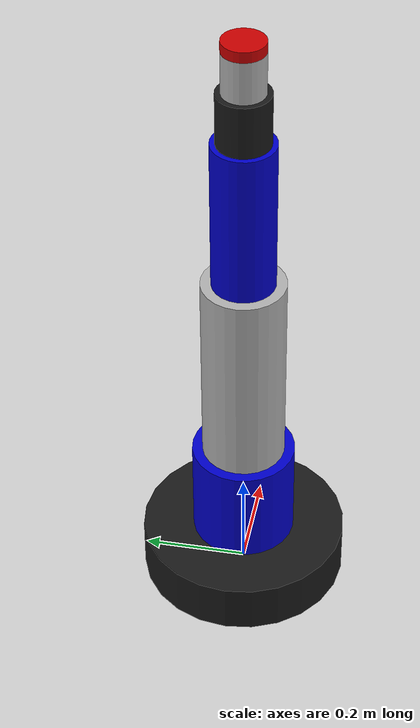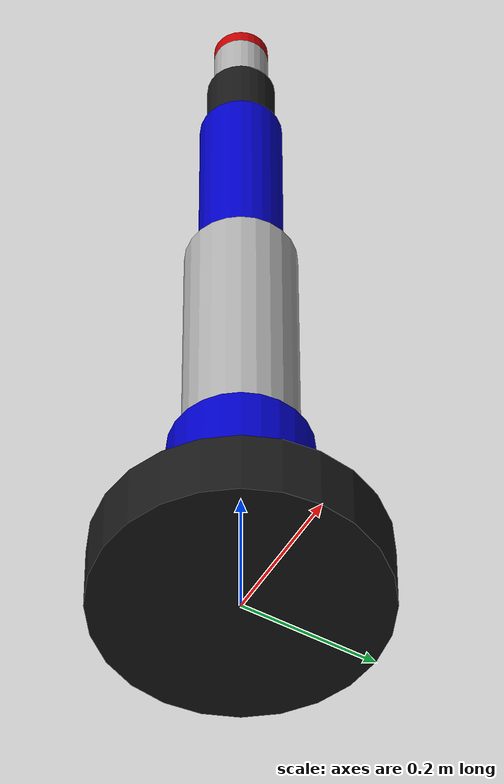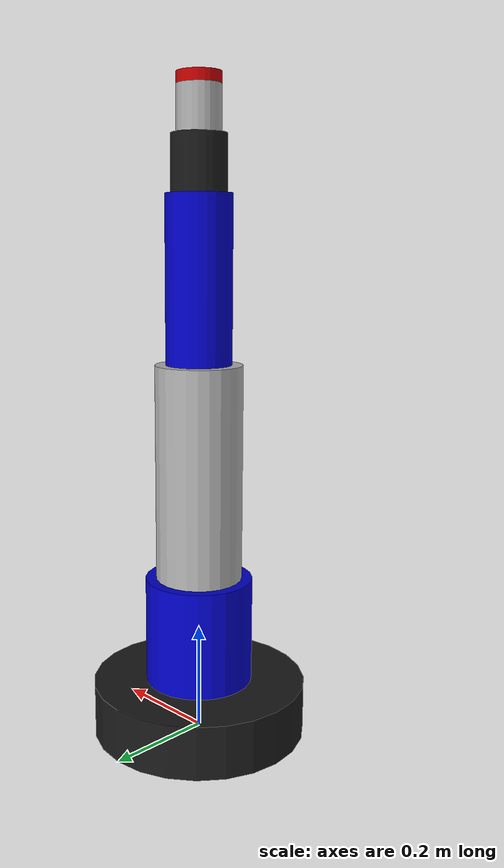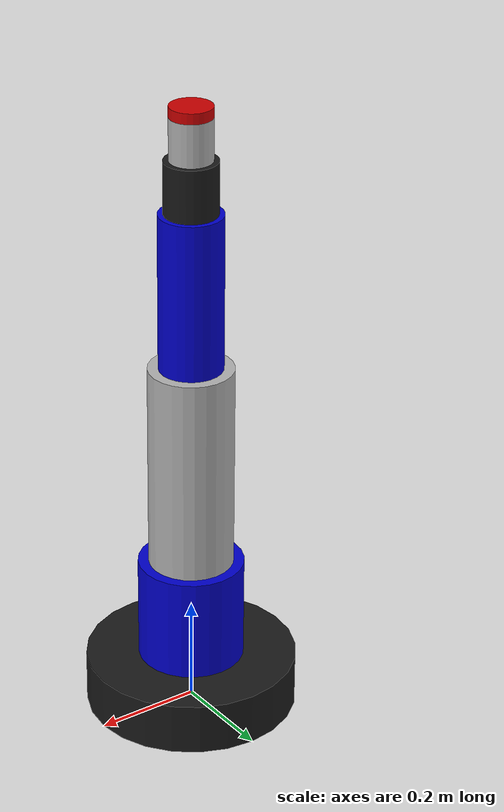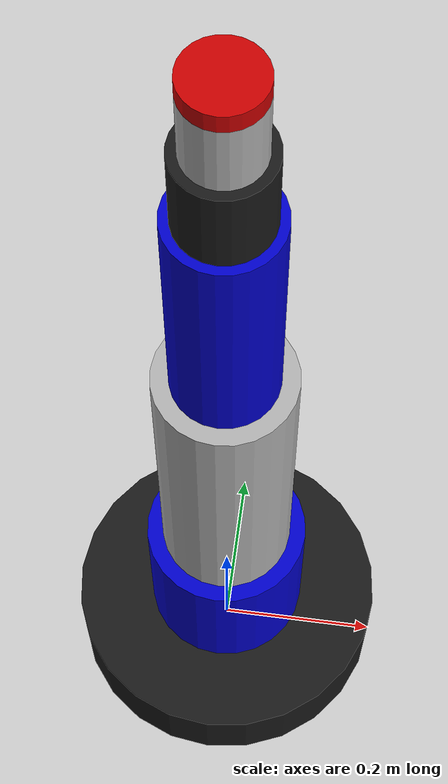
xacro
<?xml version="1.0"?>
<robot xmlns:xacro="http://www.ros.org/wiki/xacro" name="robotic_arm">

  <!-- Materials -->
  <material name="silver">
    <color rgba="0.7 0.7 0.7 1.0"/>
  </material>
  <material name="blue">
    <color rgba="0.0 0.0 0.8 1.0"/>
  </material>
  <material name="black">
    <color rgba="0.1 0.1 0.1 1.0"/>
  </material>
  <material name="red">
    <color rgba="0.8 0.0 0.0 1.0"/>
  </material>

  <!-- Cylinder Inertial Macro -->
  <xacro:macro name="cylinder_inertial" params="mass radius height *origin">
    <inertial>
      <xacro:insert_block name="origin"/>
      <mass value="${mass}"/>
      <inertia ixx="${(1.0/12.0) * mass * (3.0*radius*radius + height*height)}" ixy="0.0" ixz="0.0"
               iyy="${(1.0/12.0) * mass * (3.0*radius*radius + height*height)}" iyz="0.0"
               izz="${0.5 * mass * radius * radius}"/>
    </inertial>
  </xacro:macro>

  <!-- World link fixed to Base -->
  <link name="world"/>

  <joint name="world_joint" type="fixed">
    <parent link="world"/>
    <child link="base_link"/>
    <origin xyz="0.0 0.0 0.0" rpy="0.0 0.0 0.0"/>
  </joint>

  <!-- Base Link -->
  <link name="base_link">
    <visual>
      <origin xyz="0.0 0.0 0.05" rpy="0.0 0.0 0.0"/>
      <geometry>
        <cylinder radius="0.2" length="0.1"/>
      </geometry>
      <material name="black"/>
    </visual>
    <collision>
      <origin xyz="0.0 0.0 0.05" rpy="0.0 0.0 0.0"/>
      <geometry>
        <cylinder radius="0.2" length="0.1"/>
      </geometry>
    </collision>
    <xacro:cylinder_inertial mass="5.0" radius="0.2" height="0.1">
      <origin xyz="0.0 0.0 0.05" rpy="0.0 0.0 0.0"/>
    </xacro:cylinder_inertial>
  </link>

  <!-- Joint 1 -->
  <joint name="joint1" type="revolute">
    <parent link="base_link"/>
    <child link="shoulder_link"/>
    <origin xyz="0.0 0.0 0.1" rpy="0.0 0.0 0.0"/>
    <axis xyz="0 0 1"/>
    <limit lower="-3.14159" upper="3.14159" effort="100.0" velocity="2.0"/>
    <dynamics damping="0.5" friction="0.1"/>
  </joint>

  <!-- Shoulder Link -->
  <link name="shoulder_link">
    <visual>
      <origin xyz="0.0 0.0 0.1" rpy="0.0 0.0 0.0"/>
      <geometry>
        <cylinder radius="0.1" length="0.2"/>
      </geometry>
      <material name="blue"/>
    </visual>
    <collision>
      <origin xyz="0.0 0.0 0.1" rpy="0.0 0.0 0.0"/>
      <geometry>
        <cylinder radius="0.1" length="0.2"/>
      </geometry>
    </collision>
    <xacro:cylinder_inertial mass="4.0" radius="0.1" height="0.2">
      <origin xyz="0.0 0.0 0.1" rpy="0.0 0.0 0.0"/>
    </xacro:cylinder_inertial>
  </link>

  <!-- Joint 2 -->
  <joint name="joint2" type="revolute">
    <parent link="shoulder_link"/>
    <child link="upper_arm_link"/>
    <origin xyz="0.0 0.0 0.2" rpy="0.0 0.0 0.0"/>
    <axis xyz="0 1 0"/>
    <limit lower="-1.04719" upper="2.09439" effort="150.0" velocity="2.0"/>
    <dynamics damping="0.5" friction="0.1"/>
  </joint>

  <!-- Upper Arm Link -->
  <link name="upper_arm_link">
    <visual>
      <origin xyz="0.0 0.0 0.2" rpy="0.0 0.0 0.0"/>
      <geometry>
        <cylinder radius="0.08" length="0.4"/>
      </geometry>
      <material name="silver"/>
    </visual>
    <collision>
      <origin xyz="0.0 0.0 0.2" rpy="0.0 0.0 0.0"/>
      <geometry>
        <cylinder radius="0.08" length="0.4"/>
      </geometry>
    </collision>
    <xacro:cylinder_inertial mass="3.0" radius="0.08" height="0.4">
      <origin xyz="0.0 0.0 0.2" rpy="0.0 0.0 0.0"/>
    </xacro:cylinder_inertial>
  </link>

  <!-- Joint 3 -->
  <joint name="joint3" type="revolute">
    <parent link="upper_arm_link"/>
    <child link="forearm_link"/>
    <origin xyz="0.0 0.0 0.4" rpy="0.0 0.0 0.0"/>
    <axis xyz="0 1 0"/>
    <limit lower="-2.61799" upper="2.61799" effort="100.0" velocity="2.5"/>
    <dynamics damping="0.5" friction="0.1"/>
  </joint>

  <!-- Forearm Link -->
  <link name="forearm_link">
    <visual>
      <origin xyz="0.0 0.0 0.15" rpy="0.0 0.0 0.0"/>
      <geometry>
        <cylinder radius="0.06" length="0.3"/>
      </geometry>
      <material name="blue"/>
    </visual>
    <collision>
      <origin xyz="0.0 0.0 0.15" rpy="0.0 0.0 0.0"/>
      <geometry>
        <cylinder radius="0.06" length="0.3"/>
      </geometry>
    </collision>
    <xacro:cylinder_inertial mass="2.0" radius="0.06" height="0.3">
      <origin xyz="0.0 0.0 0.15" rpy="0.0 0.0 0.0"/>
    </xacro:cylinder_inertial>
  </link>

  <!-- Joint 4 -->
  <joint name="joint4" type="revolute">
    <parent link="forearm_link"/>
    <child link="wrist_1_link"/>
    <origin xyz="0.0 0.0 0.3" rpy="0.0 0.0 0.0"/>
    <axis xyz="0 0 1"/>
    <limit lower="-3.14159" upper="3.14159" effort="50.0" velocity="3.0"/>
    <dynamics damping="0.5" friction="0.1"/>
  </joint>

  <!-- Wrist 1 Link -->
  <link name="wrist_1_link">
    <visual>
      <origin xyz="0.0 0.0 0.05" rpy="0.0 0.0 0.0"/>
      <geometry>
        <cylinder radius="0.05" length="0.1"/>
      </geometry>
      <material name="black"/>
    </visual>
    <collision>
      <origin xyz="0.0 0.0 0.05" rpy="0.0 0.0 0.0"/>
      <geometry>
        <cylinder radius="0.05" length="0.1"/>
      </geometry>
    </collision>
    <xacro:cylinder_inertial mass="1.5" radius="0.05" height="0.1">
      <origin xyz="0.0 0.0 0.05" rpy="0.0 0.0 0.0"/>
    </xacro:cylinder_inertial>
  </link>

  <!-- Joint 5 -->
  <joint name="joint5" type="revolute">
    <parent link="wrist_1_link"/>
    <child link="wrist_2_link"/>
    <origin xyz="0.0 0.0 0.1" rpy="0.0 0.0 0.0"/>
    <axis xyz="0 1 0"/>
    <limit lower="-2.09439" upper="2.09439" effort="30.0" velocity="3.0"/>
    <dynamics damping="0.5" friction="0.1"/>
  </joint>

  <!-- Wrist 2 Link -->
  <link name="wrist_2_link">
    <visual>
      <origin xyz="0.0 0.0 0.04" rpy="0.0 0.0 0.0"/>
      <geometry>
        <cylinder radius="0.04" length="0.08"/>
      </geometry>
      <material name="silver"/>
    </visual>
    <collision>
      <origin xyz="0.0 0.0 0.04" rpy="0.0 0.0 0.0"/>
      <geometry>
        <cylinder radius="0.04" length="0.08"/>
      </geometry>
    </collision>
    <xacro:cylinder_inertial mass="1.0" radius="0.04" height="0.08">
      <origin xyz="0.0 0.0 0.04" rpy="0.0 0.0 0.0"/>
    </xacro:cylinder_inertial>
  </link>

  <!-- Joint 6 -->
  <joint name="joint6" type="revolute">
    <parent link="wrist_2_link"/>
    <child link="end_effector"/>
    <origin xyz="0.0 0.0 0.08" rpy="0.0 0.0 0.0"/>
    <axis xyz="0 0 1"/>
    <limit lower="-6.28318" upper="6.28318" effort="20.0" velocity="4.0"/>
    <dynamics damping="0.5" friction="0.1"/>
  </joint>

  <!-- End Effector Link -->
  <link name="end_effector">
    <visual>
      <origin xyz="0.0 0.0 0.01" rpy="0.0 0.0 0.0"/>
      <geometry>
        <cylinder radius="0.04" length="0.02"/>
      </geometry>
      <material name="red"/>
    </visual>
    <collision>
      <origin xyz="0.0 0.0 0.01" rpy="0.0 0.0 0.0"/>
      <geometry>
        <cylinder radius="0.04" length="0.02"/>
      </geometry>
    </collision>
    <xacro:cylinder_inertial mass="0.2" radius="0.04" height="0.02">
      <origin xyz="0.0 0.0 0.01" rpy="0.0 0.0 0.0"/>
    </xacro:cylinder_inertial>
  </link>

  <!-- Gazebo Colors -->
  <gazebo reference="base_link">
    <material>Gazebo/Black</material>
  </gazebo>
  <gazebo reference="shoulder_link">
    <material>Gazebo/Blue</material>
  </gazebo>
  <gazebo reference="upper_arm_link">
    <material>Gazebo/Grey</material>
  </gazebo>
  <gazebo reference="forearm_link">
    <material>Gazebo/Blue</material>
  </gazebo>
  <gazebo reference="wrist_1_link">
    <material>Gazebo/Black</material>
  </gazebo>
  <gazebo reference="wrist_2_link">
    <material>Gazebo/Grey</material>
  </gazebo>
  <gazebo reference="end_effector">
    <material>Gazebo/Red</material>
  </gazebo>

  <!-- ros2_control definition -->
  <ros2_control name="GazeboSystem" type="system">
    <hardware>
      <plugin>gazebo_ros2_control/GazeboSystem</plugin>
    </hardware>
    <joint name="joint1">
      <command_interface name="position"/>
      <state_interface name="position">
        <param name="initial_value">0.0</param>
      </state_interface>
      <state_interface name="velocity"/>
    </joint>
    <joint name="joint2">
      <command_interface name="position"/>
      <state_interface name="position">
        <param name="initial_value">0.0</param>
      </state_interface>
      <state_interface name="velocity"/>
    </joint>
    <joint name="joint3">
      <command_interface name="position"/>
      <state_interface name="position">
        <param name="initial_value">0.0</param>
      </state_interface>
      <state_interface name="velocity"/>
    </joint>
    <joint name="joint4">
      <command_interface name="position"/>
      <state_interface name="position">
        <param name="initial_value">0.0</param>
      </state_interface>
      <state_interface name="velocity"/>
    </joint>
    <joint name="joint5">
      <command_interface name="position"/>
      <state_interface name="position">
        <param name="initial_value">0.0</param>
      </state_interface>
      <state_interface name="velocity"/>
    </joint>
    <joint name="joint6">
      <command_interface name="position"/>
      <state_interface name="position">
        <param name="initial_value">0.0</param>
      </state_interface>
      <state_interface name="velocity"/>
    </joint>
  </ros2_control>

  <!-- Gazebo ros2_control plugin -->
  <gazebo>
    <plugin name="gazebo_ros2_control" filename="libgazebo_ros2_control.so">
      <parameters>$(find robotic_arm_kinematics)/config/ros2_controllers.yaml</parameters>
    </plugin>
  </gazebo>

</robot>
